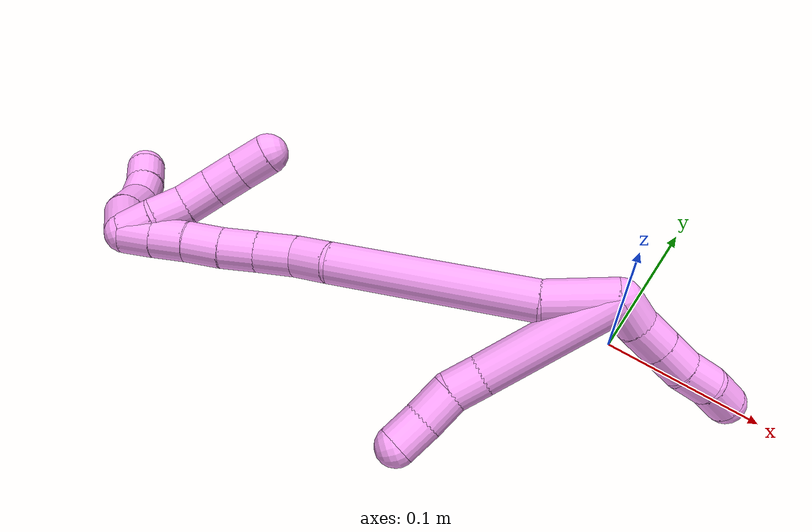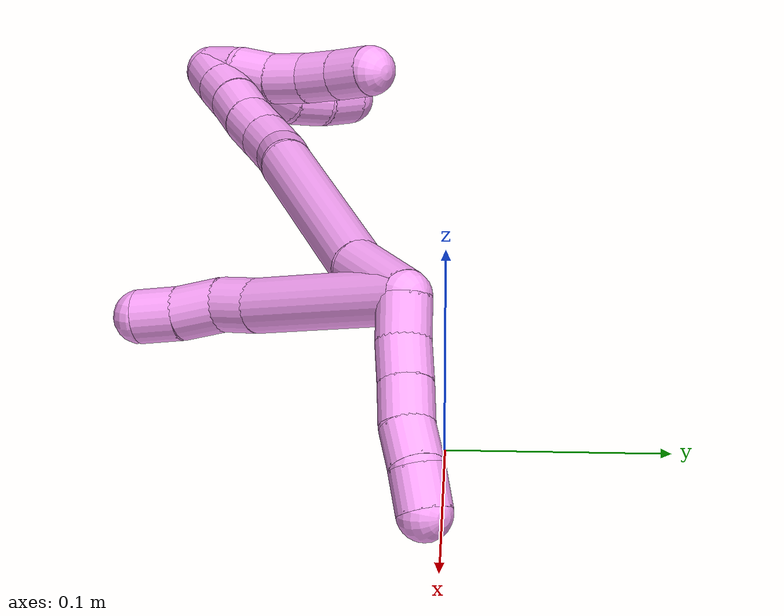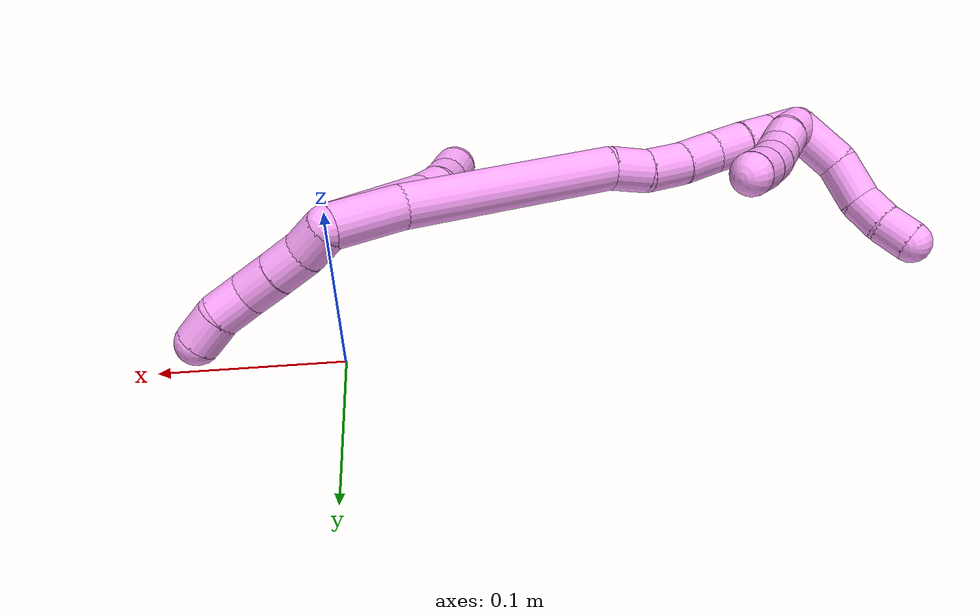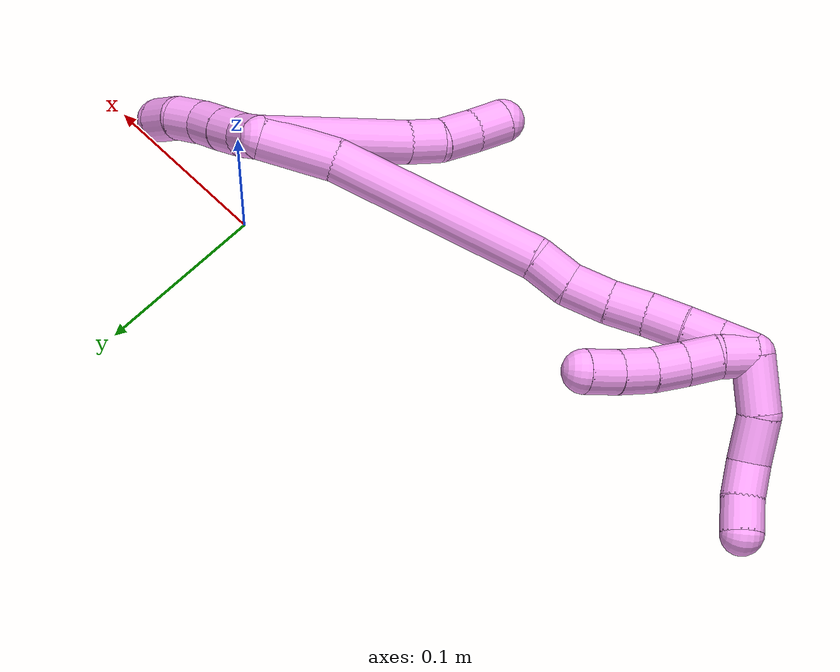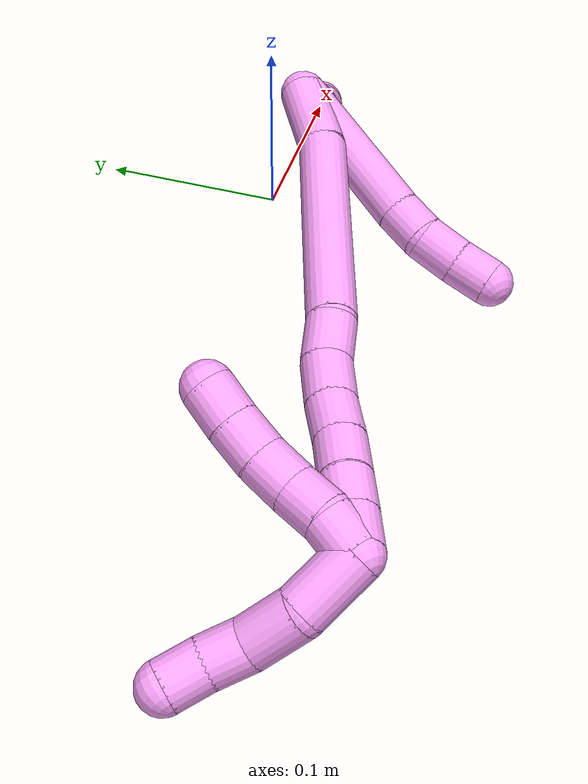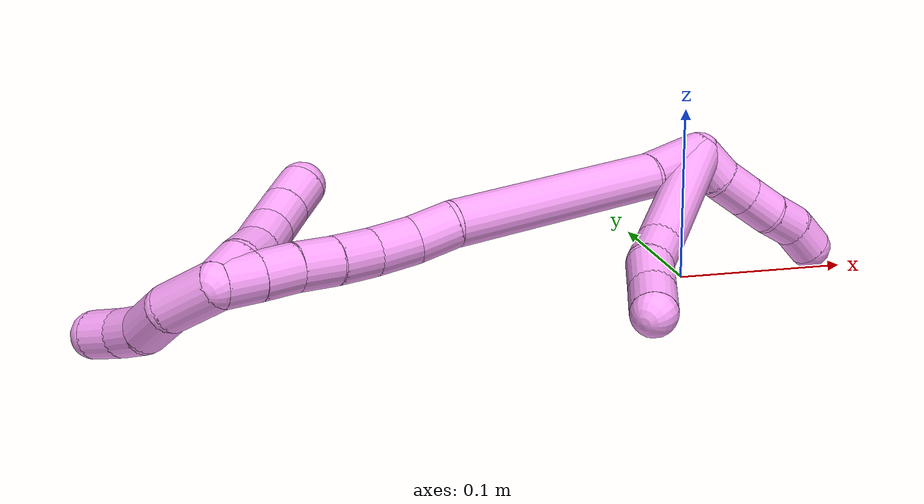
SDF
<sdf version="1.7">
 <world name="default">
  <model name="4">
   <static>0</static>
   <link name="4">
    <collision name="collision-cylinder-e_1_2_8">
     <pose>0.007244 0.004947 -0.042692 -3.02624 0.166979 -1.93366</pose>
     <geometry><cylinder><radius>0.0125</radius><length>0.087167</length></cylinder></geometry>
     <surface>
      <friction><ode><mu>1.16</mu><mu2>1.16</mu2><slip1>0</slip1><slip2>0</slip2></ode></friction>
      <contact><ode><kp>1e+06</kp><kd>1</kd><max_vel>0</max_vel><min_depth>0.001</min_depth></ode></contact>
     </surface>
    </collision>
    <visual name="visual-cylinder-e_1_2_8">
     <pose>0.007244 0.004947 -0.042692 -3.02624 0.166979 -1.93366</pose>
     <geometry><cylinder><radius>0.0125</radius><length>0.087167</length></cylinder></geometry>
     <material><ambient>1 0.65098 0.996078 1</ambient></material>
    </visual>
    <collision name="collision-cylinder-e_2_8_9">
     <pose>0.016338 0.010082 -0.095255 -3.12244 0.185244 -2.93612</pose>
     <geometry><cylinder><radius>0.0125</radius><length>0.020092</length></cylinder></geometry>
     <surface>
      <friction><ode><mu>1.16</mu><mu2>1.16</mu2><slip1>0</slip1><slip2>0</slip2></ode></friction>
      <contact><ode><kp>1e+06</kp><kd>1</kd><max_vel>0</max_vel><min_depth>0.001</min_depth></ode></contact>
     </surface>
    </collision>
    <visual name="visual-cylinder-e_2_8_9">
     <pose>0.016338 0.010082 -0.095255 -3.12244 0.185244 -2.93612</pose>
     <geometry><cylinder><radius>0.0125</radius><length>0.020092</length></cylinder></geometry>
     <material><ambient>1 0.65098 0.996078 1</ambient></material>
    </visual>
    <collision name="collision-cylinder-e_3_9_10">
     <pose>0.023377 0.011264 -0.114811 -3.03945 0.489707 -2.73802</pose>
     <geometry><cylinder><radius>0.0125</radius><length>0.022062</length></cylinder></geometry>
     <surface>
      <friction><ode><mu>1.16</mu><mu2>1.16</mu2><slip1>0</slip1><slip2>0</slip2></ode></friction>
      <contact><ode><kp>1e+06</kp><kd>1</kd><max_vel>0</max_vel><min_depth>0.001</min_depth></ode></contact>
     </surface>
    </collision>
    <visual name="visual-cylinder-e_3_9_10">
     <pose>0.023377 0.011264 -0.114811 -3.03945 0.489707 -2.73802</pose>
     <geometry><cylinder><radius>0.0125</radius><length>0.022062</length></cylinder></geometry>
     <material><ambient>1 0.65098 0.996078 1</ambient></material>
    </visual>
    <collision name="collision-cylinder-e_4_10_6">
     <pose>0.03323 0.012005 -0.13372 3.1143 0.467996 3.02722</pose>
     <geometry><cylinder><radius>0.0125</radius><length>0.02068</length></cylinder></geometry>
     <surface>
      <friction><ode><mu>1.16</mu><mu2>1.16</mu2><slip1>0</slip1><slip2>0</slip2></ode></friction>
      <contact><ode><kp>1e+06</kp><kd>1</kd><max_vel>0</max_vel><min_depth>0.001</min_depth></ode></contact>
     </surface>
    </collision>
    <visual name="visual-cylinder-e_4_10_6">
     <pose>0.03323 0.012005 -0.13372 3.1143 0.467996 3.02722</pose>
     <geometry><cylinder><radius>0.0125</radius><length>0.02068</length></cylinder></geometry>
     <material><ambient>1 0.65098 0.996078 1</ambient></material>
    </visual>
    <collision name="collision-cylinder-e_1_2_11">
     <pose>0.006049 0.007449 0.002815 -1.20952 0.64965 -0.457351</pose>
     <geometry><cylinder><radius>0.0125</radius><length>0.02</length></cylinder></geometry>
     <surface>
      <friction><ode><mu>1.16</mu><mu2>1.16</mu2><slip1>0</slip1><slip2>0</slip2></ode></friction>
      <contact><ode><kp>1e+06</kp><kd>1</kd><max_vel>0</max_vel><min_depth>0.001</min_depth></ode></contact>
     </surface>
    </collision>
    <visual name="visual-cylinder-e_1_2_11">
     <pose>0.006049 0.007449 0.002815 -1.20952 0.64965 -0.457351</pose>
     <geometry><cylinder><radius>0.0125</radius><length>0.02</length></cylinder></geometry>
     <material><ambient>1 0.65098 0.996078 1</ambient></material>
    </visual>
    <collision name="collision-cylinder-e_2_11_12">
     <pose>0.018422 0.021098 0.010273 -0.927933 0.684676 -0.352944</pose>
     <geometry><cylinder><radius>0.0125</radius><length>0.02</length></cylinder></geometry>
     <surface>
      <friction><ode><mu>1.16</mu><mu2>1.16</mu2><slip1>0</slip1><slip2>0</slip2></ode></friction>
      <contact><ode><kp>1e+06</kp><kd>1</kd><max_vel>0</max_vel><min_depth>0.001</min_depth></ode></contact>
     </surface>
    </collision>
    <visual name="visual-cylinder-e_2_11_12">
     <pose>0.018422 0.021098 0.010273 -0.927933 0.684676 -0.352944</pose>
     <geometry><cylinder><radius>0.0125</radius><length>0.02</length></cylinder></geometry>
     <material><ambient>1 0.65098 0.996078 1</ambient></material>
    </visual>
    <collision name="collision-cylinder-e_3_12_13">
     <pose>0.031262 0.033398 0.019426 -0.934203 0.70963 -0.369439</pose>
     <geometry><cylinder><radius>0.0125</radius><length>0.02</length></cylinder></geometry>
     <surface>
      <friction><ode><mu>1.16</mu><mu2>1.16</mu2><slip1>0</slip1><slip2>0</slip2></ode></friction>
      <contact><ode><kp>1e+06</kp><kd>1</kd><max_vel>0</max_vel><min_depth>0.001</min_depth></ode></contact>
     </surface>
    </collision>
    <visual name="visual-cylinder-e_3_12_13">
     <pose>0.031262 0.033398 0.019426 -0.934203 0.70963 -0.369439</pose>
     <geometry><cylinder><radius>0.0125</radius><length>0.02</length></cylinder></geometry>
     <material><ambient>1 0.65098 0.996078 1</ambient></material>
    </visual>
    <collision name="collision-cylinder-e_4_13_14">
     <pose>0.043199 0.045321 0.029994 -0.76564 0.57301 -0.236168</pose>
     <geometry><cylinder><radius>0.0125</radius><length>0.02</length></cylinder></geometry>
     <surface>
      <friction><ode><mu>1.16</mu><mu2>1.16</mu2><slip1>0</slip1><slip2>0</slip2></ode></friction>
      <contact><ode><kp>1e+06</kp><kd>1</kd><max_vel>0</max_vel><min_depth>0.001</min_depth></ode></contact>
     </surface>
    </collision>
    <visual name="visual-cylinder-e_4_13_14">
     <pose>0.043199 0.045321 0.029994 -0.76564 0.57301 -0.236168</pose>
     <geometry><cylinder><radius>0.0125</radius><length>0.02</length></cylinder></geometry>
     <material><ambient>1 0.65098 0.996078 1</ambient></material>
    </visual>
    <collision name="collision-cylinder-e_5_14_5">
     <pose>0.05331 0.058942 0.040201 -1.08182 0.488064 -0.296925</pose>
     <geometry><cylinder><radius>0.0125</radius><length>0.02</length></cylinder></geometry>
     <surface>
      <friction><ode><mu>1.16</mu><mu2>1.16</mu2><slip1>0</slip1><slip2>0</slip2></ode></friction>
      <contact><ode><kp>1e+06</kp><kd>1</kd><max_vel>0</max_vel><min_depth>0.001</min_depth></ode></contact>
     </surface>
    </collision>
    <visual name="visual-cylinder-e_5_14_5">
     <pose>0.05331 0.058942 0.040201 -1.08182 0.488064 -0.296925</pose>
     <geometry><cylinder><radius>0.0125</radius><length>0.02</length></cylinder></geometry>
     <material><ambient>1 0.65098 0.996078 1</ambient></material>
    </visual>
    <collision name="collision-cylinder-e_1_2_15">
     <pose>-0.006202 -0.001131 -0.020783 3.08722 -0.289592 -2.77285</pose>
     <geometry><cylinder><radius>0.0125</radius><length>0.043435</length></cylinder></geometry>
     <surface>
      <friction><ode><mu>1.16</mu><mu2>1.16</mu2><slip1>0</slip1><slip2>0</slip2></ode></friction>
      <contact><ode><kp>1e+06</kp><kd>1</kd><max_vel>0</max_vel><min_depth>0.001</min_depth></ode></contact>
     </surface>
    </collision>
    <visual name="visual-cylinder-e_1_2_15">
     <pose>-0.006202 -0.001131 -0.020783 3.08722 -0.289592 -2.77285</pose>
     <geometry><cylinder><radius>0.0125</radius><length>0.043435</length></cylinder></geometry>
     <material><ambient>1 0.65098 0.996078 1</ambient></material>
    </visual>
    <collision name="collision-cylinder-e_2_15_16">
     <pose>-0.042601 -0.005585 -0.095875 3.08048 -0.506665 -2.90655</pose>
     <geometry><cylinder><radius>0.0125</radius><length>0.124459</length></cylinder></geometry>
     <surface>
      <friction><ode><mu>1.16</mu><mu2>1.16</mu2><slip1>0</slip1><slip2>0</slip2></ode></friction>
      <contact><ode><kp>1e+06</kp><kd>1</kd><max_vel>0</max_vel><min_depth>0.001</min_depth></ode></contact>
     </surface>
    </collision>
    <visual name="visual-cylinder-e_2_15_16">
     <pose>-0.042601 -0.005585 -0.095875 3.08048 -0.506665 -2.90655</pose>
     <geometry><cylinder><radius>0.0125</radius><length>0.124459</length></cylinder></geometry>
     <material><ambient>1 0.65098 0.996078 1</ambient></material>
    </visual>
    <collision name="collision-cylinder-e_3_16_17">
     <pose>-0.079177 -0.006943 -0.159602 -2.9358 -0.58546 2.48143</pose>
     <geometry><cylinder><radius>0.0125</radius><length>0.023085</length></cylinder></geometry>
     <surface>
      <friction><ode><mu>1.16</mu><mu2>1.16</mu2><slip1>0</slip1><slip2>0</slip2></ode></friction>
      <contact><ode><kp>1e+06</kp><kd>1</kd><max_vel>0</max_vel><min_depth>0.001</min_depth></ode></contact>
     </surface>
    </collision>
    <visual name="visual-cylinder-e_3_16_17">
     <pose>-0.079177 -0.006943 -0.159602 -2.9358 -0.58546 2.48143</pose>
     <geometry><cylinder><radius>0.0125</radius><length>0.023085</length></cylinder></geometry>
     <material><ambient>1 0.65098 0.996078 1</ambient></material>
    </visual>
    <collision name="collision-cylinder-e_4_17_18">
     <pose>-0.090858 -0.005592 -0.180122 3.08624 -0.445008 -2.8981</pose>
     <geometry><cylinder><radius>0.0125</radius><length>0.02464</length></cylinder></geometry>
     <surface>
      <friction><ode><mu>1.16</mu><mu2>1.16</mu2><slip1>0</slip1><slip2>0</slip2></ode></friction>
      <contact><ode><kp>1e+06</kp><kd>1</kd><max_vel>0</max_vel><min_depth>0.001</min_depth></ode></contact>
     </surface>
    </collision>
    <visual name="visual-cylinder-e_4_17_18">
     <pose>-0.090858 -0.005592 -0.180122 3.08624 -0.445008 -2.8981</pose>
     <geometry><cylinder><radius>0.0125</radius><length>0.02464</length></cylinder></geometry>
     <material><ambient>1 0.65098 0.996078 1</ambient></material>
    </visual>
    <collision name="collision-cylinder-e_5_18_19">
     <pose>-0.100374 -0.007875 -0.201334 2.97812 -0.390038 -2.35536</pose>
     <geometry><cylinder><radius>0.0125</radius><length>0.022155</length></cylinder></geometry>
     <surface>
      <friction><ode><mu>1.16</mu><mu2>1.16</mu2><slip1>0</slip1><slip2>0</slip2></ode></friction>
      <contact><ode><kp>1e+06</kp><kd>1</kd><max_vel>0</max_vel><min_depth>0.001</min_depth></ode></contact>
     </surface>
    </collision>
    <visual name="visual-cylinder-e_5_18_19">
     <pose>-0.100374 -0.007875 -0.201334 2.97812 -0.390038 -2.35536</pose>
     <geometry><cylinder><radius>0.0125</radius><length>0.022155</length></cylinder></geometry>
     <material><ambient>1 0.65098 0.996078 1</ambient></material>
    </visual>
    <collision name="collision-cylinder-e_6_19_20">
     <pose>-0.10945 -0.01138 -0.221093 2.95337 -0.459755 -2.37481</pose>
     <geometry><cylinder><radius>0.0125</radius><length>0.021925</length></cylinder></geometry>
     <surface>
      <friction><ode><mu>1.16</mu><mu2>1.16</mu2><slip1>0</slip1><slip2>0</slip2></ode></friction>
      <contact><ode><kp>1e+06</kp><kd>1</kd><max_vel>0</max_vel><min_depth>0.001</min_depth></ode></contact>
     </surface>
    </collision>
    <visual name="visual-cylinder-e_6_19_20">
     <pose>-0.10945 -0.01138 -0.221093 2.95337 -0.459755 -2.37481</pose>
     <geometry><cylinder><radius>0.0125</radius><length>0.021925</length></cylinder></geometry>
     <material><ambient>1 0.65098 0.996078 1</ambient></material>
    </visual>
    <collision name="collision-cylinder-e_7_20_21">
     <pose>-0.118608 -0.014248 -0.239884 3.02941 -0.436772 -2.64596</pose>
     <geometry><cylinder><radius>0.0125</radius><length>0.020301</length></cylinder></geometry>
     <surface>
      <friction><ode><mu>1.16</mu><mu2>1.16</mu2><slip1>0</slip1><slip2>0</slip2></ode></friction>
      <contact><ode><kp>1e+06</kp><kd>1</kd><max_vel>0</max_vel><min_depth>0.001</min_depth></ode></contact>
     </surface>
    </collision>
    <visual name="visual-cylinder-e_7_20_21">
     <pose>-0.118608 -0.014248 -0.239884 3.02941 -0.436772 -2.64596</pose>
     <geometry><cylinder><radius>0.0125</radius><length>0.020301</length></cylinder></geometry>
     <material><ambient>1 0.65098 0.996078 1</ambient></material>
    </visual>
    <collision name="collision-cylinder-e_8_21_1">
     <pose>-0.127334 -0.016541 -0.257898 3.00017 -0.459212 -2.55312</pose>
     <geometry><cylinder><radius>0.0125</radius><length>0.020001</length></cylinder></geometry>
     <surface>
      <friction><ode><mu>1.16</mu><mu2>1.16</mu2><slip1>0</slip1><slip2>0</slip2></ode></friction>
      <contact><ode><kp>1e+06</kp><kd>1</kd><max_vel>0</max_vel><min_depth>0.001</min_depth></ode></contact>
     </surface>
    </collision>
    <visual name="visual-cylinder-e_8_21_1">
     <pose>-0.127334 -0.016541 -0.257898 3.00017 -0.459212 -2.55312</pose>
     <geometry><cylinder><radius>0.0125</radius><length>0.020001</length></cylinder></geometry>
     <material><ambient>1 0.65098 0.996078 1</ambient></material>
    </visual>
    <collision name="collision-cylinder-e_1_1_22">
     <pose>-0.133226 -0.017844 -0.25688 0.003927 -0.146415 -0.000288</pose>
     <geometry><cylinder><radius>0.0125</radius><length>0.02</length></cylinder></geometry>
     <surface>
      <friction><ode><mu>1.16</mu><mu2>1.16</mu2><slip1>0</slip1><slip2>0</slip2></ode></friction>
      <contact><ode><kp>1e+06</kp><kd>1</kd><max_vel>0</max_vel><min_depth>0.001</min_depth></ode></contact>
     </surface>
    </collision>
    <visual name="visual-cylinder-e_1_1_22">
     <pose>-0.133226 -0.017844 -0.25688 0.003927 -0.146415 -0.000288</pose>
     <geometry><cylinder><radius>0.0125</radius><length>0.02</length></cylinder></geometry>
     <material><ambient>1 0.65098 0.996078 1</ambient></material>
    </visual>
    <collision name="collision-cylinder-e_2_22_23">
     <pose>-0.136928 -0.015849 -0.237457 -0.210176 -0.226263 0.023967</pose>
     <geometry><cylinder><radius>0.0125</radius><length>0.02</length></cylinder></geometry>
     <surface>
      <friction><ode><mu>1.16</mu><mu2>1.16</mu2><slip1>0</slip1><slip2>0</slip2></ode></friction>
      <contact><ode><kp>1e+06</kp><kd>1</kd><max_vel>0</max_vel><min_depth>0.001</min_depth></ode></contact>
     </surface>
    </collision>
    <visual name="visual-cylinder-e_2_22_23">
     <pose>-0.136928 -0.015849 -0.237457 -0.210176 -0.226263 0.023967</pose>
     <geometry><cylinder><radius>0.0125</radius><length>0.02</length></cylinder></geometry>
     <material><ambient>1 0.65098 0.996078 1</ambient></material>
    </visual>
    <collision name="collision-cylinder-e_3_23_24">
     <pose>-0.142064 -0.013559 -0.218357 -0.026908 -0.293391 0.003976</pose>
     <geometry><cylinder><radius>0.0125</radius><length>0.02</length></cylinder></geometry>
     <surface>
      <friction><ode><mu>1.16</mu><mu2>1.16</mu2><slip1>0</slip1><slip2>0</slip2></ode></friction>
      <contact><ode><kp>1e+06</kp><kd>1</kd><max_vel>0</max_vel><min_depth>0.001</min_depth></ode></contact>
     </surface>
    </collision>
    <visual name="visual-cylinder-e_3_23_24">
     <pose>-0.142064 -0.013559 -0.218357 -0.026908 -0.293391 0.003976</pose>
     <geometry><cylinder><radius>0.0125</radius><length>0.02</length></cylinder></geometry>
     <material><ambient>1 0.65098 0.996078 1</ambient></material>
    </visual>
    <collision name="collision-cylinder-e_4_24_25">
     <pose>-0.147095 -0.014102 -0.199052 0.082049 -0.215631 -0.008886</pose>
     <geometry><cylinder><radius>0.0125</radius><length>0.02</length></cylinder></geometry>
     <surface>
      <friction><ode><mu>1.16</mu><mu2>1.16</mu2><slip1>0</slip1><slip2>0</slip2></ode></friction>
      <contact><ode><kp>1e+06</kp><kd>1</kd><max_vel>0</max_vel><min_depth>0.001</min_depth></ode></contact>
     </surface>
    </collision>
    <visual name="visual-cylinder-e_4_24_25">
     <pose>-0.147095 -0.014102 -0.199052 0.082049 -0.215631 -0.008886</pose>
     <geometry><cylinder><radius>0.0125</radius><length>0.02</length></cylinder></geometry>
     <material><ambient>1 0.65098 0.996078 1</ambient></material>
    </visual>
    <collision name="collision-cylinder-e_5_25_4">
     <pose>-0.150871 -0.016175 -0.179533 0.129321 -0.164359 -0.010666</pose>
     <geometry><cylinder><radius>0.0125</radius><length>0.02</length></cylinder></geometry>
     <surface>
      <friction><ode><mu>1.16</mu><mu2>1.16</mu2><slip1>0</slip1><slip2>0</slip2></ode></friction>
      <contact><ode><kp>1e+06</kp><kd>1</kd><max_vel>0</max_vel><min_depth>0.001</min_depth></ode></contact>
     </surface>
    </collision>
    <visual name="visual-cylinder-e_5_25_4">
     <pose>-0.150871 -0.016175 -0.179533 0.129321 -0.164359 -0.010666</pose>
     <geometry><cylinder><radius>0.0125</radius><length>0.02</length></cylinder></geometry>
     <material><ambient>1 0.65098 0.996078 1</ambient></material>
    </visual>
    <collision name="collision-cylinder-e_1_1_26">
     <pose>-0.144811 -0.008313 -0.270086 -1.90659 -0.914155 1.21142</pose>
     <geometry><cylinder><radius>0.0125</radius><length>0.032937</length></cylinder></geometry>
     <surface>
      <friction><ode><mu>1.16</mu><mu2>1.16</mu2><slip1>0</slip1><slip2>0</slip2></ode></friction>
      <contact><ode><kp>1e+06</kp><kd>1</kd><max_vel>0</max_vel><min_depth>0.001</min_depth></ode></contact>
     </surface>
    </collision>
    <visual name="visual-cylinder-e_1_1_26">
     <pose>-0.144811 -0.008313 -0.270086 -1.90659 -0.914155 1.21142</pose>
     <geometry><cylinder><radius>0.0125</radius><length>0.032937</length></cylinder></geometry>
     <material><ambient>1 0.65098 0.996078 1</ambient></material>
    </visual>
    <collision name="collision-cylinder-e_2_26_27">
     <pose>-0.166993 0.011094 -0.272298 -1.46025 -0.74163 0.66984</pose>
     <geometry><cylinder><radius>0.0125</radius><length>0.027059</length></cylinder></geometry>
     <surface>
      <friction><ode><mu>1.16</mu><mu2>1.16</mu2><slip1>0</slip1><slip2>0</slip2></ode></friction>
      <contact><ode><kp>1e+06</kp><kd>1</kd><max_vel>0</max_vel><min_depth>0.001</min_depth></ode></contact>
     </surface>
    </collision>
    <visual name="visual-cylinder-e_2_26_27">
     <pose>-0.166993 0.011094 -0.272298 -1.46025 -0.74163 0.66984</pose>
     <geometry><cylinder><radius>0.0125</radius><length>0.027059</length></cylinder></geometry>
     <material><ambient>1 0.65098 0.996078 1</ambient></material>
    </visual>
    <collision name="collision-cylinder-e_3_27_28">
     <pose>-0.184821 0.025814 -0.269992 -1.32492 -1.05265 0.851037</pose>
     <geometry><cylinder><radius>0.0125</radius><length>0.020002</length></cylinder></geometry>
     <surface>
      <friction><ode><mu>1.16</mu><mu2>1.16</mu2><slip1>0</slip1><slip2>0</slip2></ode></friction>
      <contact><ode><kp>1e+06</kp><kd>1</kd><max_vel>0</max_vel><min_depth>0.001</min_depth></ode></contact>
     </surface>
    </collision>
    <visual name="visual-cylinder-e_3_27_28">
     <pose>-0.184821 0.025814 -0.269992 -1.32492 -1.05265 0.851037</pose>
     <geometry><cylinder><radius>0.0125</radius><length>0.020002</length></cylinder></geometry>
     <material><ambient>1 0.65098 0.996078 1</ambient></material>
    </visual>
    <collision name="collision-cylinder-e_4_28_3">
     <pose>-0.202769 0.034396 -0.268792 -1.57234 -1.18344 1.18487</pose>
     <geometry><cylinder><radius>0.0125</radius><length>0.020002</length></cylinder></geometry>
     <surface>
      <friction><ode><mu>1.16</mu><mu2>1.16</mu2><slip1>0</slip1><slip2>0</slip2></ode></friction>
      <contact><ode><kp>1e+06</kp><kd>1</kd><max_vel>0</max_vel><min_depth>0.001</min_depth></ode></contact>
     </surface>
    </collision>
    <visual name="visual-cylinder-e_4_28_3">
     <pose>-0.202769 0.034396 -0.268792 -1.57234 -1.18344 1.18487</pose>
     <geometry><cylinder><radius>0.0125</radius><length>0.020002</length></cylinder></geometry>
     <material><ambient>1 0.65098 0.996078 1</ambient></material>
    </visual>
    <collision name="collision-sphere-3">
     <pose>-0.212029 0.038173 -0.268798 0 -0 0</pose>
     <geometry><sphere><radius>0.0125</radius></sphere></geometry>
     <surface>
      <friction><ode><mu>1.16</mu><mu2>1.16</mu2><slip1>0</slip1><slip2>0</slip2></ode></friction>
      <contact><ode><kp>1e+06</kp><kd>1</kd><max_vel>0</max_vel><min_depth>0.001</min_depth></ode></contact>
     </surface>
    </collision>
    <visual name="visual-sphere-3">
     <pose>-0.212029 0.038173 -0.268798 0 -0 0</pose>
     <geometry><sphere><radius>0.0125</radius></sphere></geometry>
     <material><ambient>1 0.65098 0.996078 1</ambient></material>
    </visual>
    <collision name="collision-sphere-28">
     <pose>-0.193509 0.030618 -0.268786 0 -0 0</pose>
     <geometry><sphere><radius>0.0125</radius></sphere></geometry>
     <surface>
      <friction><ode><mu>1.16</mu><mu2>1.16</mu2><slip1>0</slip1><slip2>0</slip2></ode></friction>
      <contact><ode><kp>1e+06</kp><kd>1</kd><max_vel>0</max_vel><min_depth>0.001</min_depth></ode></contact>
     </surface>
    </collision>
    <visual name="visual-sphere-28">
     <pose>-0.193509 0.030618 -0.268786 0 -0 0</pose>
     <geometry><sphere><radius>0.0125</radius></sphere></geometry>
     <material><ambient>1 0.65098 0.996078 1</ambient></material>
    </visual>
    <collision name="collision-sphere-27">
     <pose>-0.176132 0.021009 -0.271197 0 -0 0</pose>
     <geometry><sphere><radius>0.0125</radius></sphere></geometry>
     <surface>
      <friction><ode><mu>1.16</mu><mu2>1.16</mu2><slip1>0</slip1><slip2>0</slip2></ode></friction>
      <contact><ode><kp>1e+06</kp><kd>1</kd><max_vel>0</max_vel><min_depth>0.001</min_depth></ode></contact>
     </surface>
    </collision>
    <visual name="visual-sphere-27">
     <pose>-0.176132 0.021009 -0.271197 0 -0 0</pose>
     <geometry><sphere><radius>0.0125</radius></sphere></geometry>
     <material><ambient>1 0.65098 0.996078 1</ambient></material>
    </visual>
    <collision name="collision-sphere-26">
     <pose>-0.157855 0.001179 -0.273399 0 -0 0</pose>
     <geometry><sphere><radius>0.0125</radius></sphere></geometry>
     <surface>
      <friction><ode><mu>1.16</mu><mu2>1.16</mu2><slip1>0</slip1><slip2>0</slip2></ode></friction>
      <contact><ode><kp>1e+06</kp><kd>1</kd><max_vel>0</max_vel><min_depth>0.001</min_depth></ode></contact>
     </surface>
    </collision>
    <visual name="visual-sphere-26">
     <pose>-0.157855 0.001179 -0.273399 0 -0 0</pose>
     <geometry><sphere><radius>0.0125</radius></sphere></geometry>
     <material><ambient>1 0.65098 0.996078 1</ambient></material>
    </visual>
    <collision name="collision-sphere-4">
     <pose>-0.152507 -0.017447 -0.169751 0 -0 0</pose>
     <geometry><sphere><radius>0.0125</radius></sphere></geometry>
     <surface>
      <friction><ode><mu>1.16</mu><mu2>1.16</mu2><slip1>0</slip1><slip2>0</slip2></ode></friction>
      <contact><ode><kp>1e+06</kp><kd>1</kd><max_vel>0</max_vel><min_depth>0.001</min_depth></ode></contact>
     </surface>
    </collision>
    <visual name="visual-sphere-4">
     <pose>-0.152507 -0.017447 -0.169751 0 -0 0</pose>
     <geometry><sphere><radius>0.0125</radius></sphere></geometry>
     <material><ambient>1 0.65098 0.996078 1</ambient></material>
    </visual>
    <collision name="collision-sphere-25">
     <pose>-0.149235 -0.014902 -0.189316 0 -0 0</pose>
     <geometry><sphere><radius>0.0125</radius></sphere></geometry>
     <surface>
      <friction><ode><mu>1.16</mu><mu2>1.16</mu2><slip1>0</slip1><slip2>0</slip2></ode></friction>
      <contact><ode><kp>1e+06</kp><kd>1</kd><max_vel>0</max_vel><min_depth>0.001</min_depth></ode></contact>
     </surface>
    </collision>
    <visual name="visual-sphere-25">
     <pose>-0.149235 -0.014902 -0.189316 0 -0 0</pose>
     <geometry><sphere><radius>0.0125</radius></sphere></geometry>
     <material><ambient>1 0.65098 0.996078 1</ambient></material>
    </visual>
    <collision name="collision-sphere-24">
     <pose>-0.144956 -0.013301 -0.208787 0 -0 0</pose>
     <geometry><sphere><radius>0.0125</radius></sphere></geometry>
     <surface>
      <friction><ode><mu>1.16</mu><mu2>1.16</mu2><slip1>0</slip1><slip2>0</slip2></ode></friction>
      <contact><ode><kp>1e+06</kp><kd>1</kd><max_vel>0</max_vel><min_depth>0.001</min_depth></ode></contact>
     </surface>
    </collision>
    <visual name="visual-sphere-24">
     <pose>-0.144956 -0.013301 -0.208787 0 -0 0</pose>
     <geometry><sphere><radius>0.0125</radius></sphere></geometry>
     <material><ambient>1 0.65098 0.996078 1</ambient></material>
    </visual>
    <collision name="collision-sphere-23">
     <pose>-0.139172 -0.013816 -0.227926 0 -0 0</pose>
     <geometry><sphere><radius>0.0125</radius></sphere></geometry>
     <surface>
      <friction><ode><mu>1.16</mu><mu2>1.16</mu2><slip1>0</slip1><slip2>0</slip2></ode></friction>
      <contact><ode><kp>1e+06</kp><kd>1</kd><max_vel>0</max_vel><min_depth>0.001</min_depth></ode></contact>
     </surface>
    </collision>
    <visual name="visual-sphere-23">
     <pose>-0.139172 -0.013816 -0.227926 0 -0 0</pose>
     <geometry><sphere><radius>0.0125</radius></sphere></geometry>
     <material><ambient>1 0.65098 0.996078 1</ambient></material>
    </visual>
    <collision name="collision-sphere-22">
     <pose>-0.134685 -0.017883 -0.246987 0 -0 0</pose>
     <geometry><sphere><radius>0.0125</radius></sphere></geometry>
     <surface>
      <friction><ode><mu>1.16</mu><mu2>1.16</mu2><slip1>0</slip1><slip2>0</slip2></ode></friction>
      <contact><ode><kp>1e+06</kp><kd>1</kd><max_vel>0</max_vel><min_depth>0.001</min_depth></ode></contact>
     </surface>
    </collision>
    <visual name="visual-sphere-22">
     <pose>-0.134685 -0.017883 -0.246987 0 -0 0</pose>
     <geometry><sphere><radius>0.0125</radius></sphere></geometry>
     <material><ambient>1 0.65098 0.996078 1</ambient></material>
    </visual>
    <collision name="collision-sphere-1">
     <pose>-0.131767 -0.017805 -0.266773 0 -0 0</pose>
     <geometry><sphere><radius>0.0125</radius></sphere></geometry>
     <surface>
      <friction><ode><mu>1.16</mu><mu2>1.16</mu2><slip1>0</slip1><slip2>0</slip2></ode></friction>
      <contact><ode><kp>1e+06</kp><kd>1</kd><max_vel>0</max_vel><min_depth>0.001</min_depth></ode></contact>
     </surface>
    </collision>
    <visual name="visual-sphere-1">
     <pose>-0.131767 -0.017805 -0.266773 0 -0 0</pose>
     <geometry><sphere><radius>0.0125</radius></sphere></geometry>
     <material><ambient>1 0.65098 0.996078 1</ambient></material>
    </visual>
    <collision name="collision-sphere-21">
     <pose>-0.122902 -0.015278 -0.249023 0 -0 0</pose>
     <geometry><sphere><radius>0.0125</radius></sphere></geometry>
     <surface>
      <friction><ode><mu>1.16</mu><mu2>1.16</mu2><slip1>0</slip1><slip2>0</slip2></ode></friction>
      <contact><ode><kp>1e+06</kp><kd>1</kd><max_vel>0</max_vel><min_depth>0.001</min_depth></ode></contact>
     </surface>
    </collision>
    <visual name="visual-sphere-21">
     <pose>-0.122902 -0.015278 -0.249023 0 -0 0</pose>
     <geometry><sphere><radius>0.0125</radius></sphere></geometry>
     <material><ambient>1 0.65098 0.996078 1</ambient></material>
    </visual>
    <collision name="collision-sphere-11">
     <pose>0.012098 0.014898 0.005629 0 -0 0</pose>
     <geometry><sphere><radius>0.0125</radius></sphere></geometry>
     <surface>
      <friction><ode><mu>1.16</mu><mu2>1.16</mu2><slip1>0</slip1><slip2>0</slip2></ode></friction>
      <contact><ode><kp>1e+06</kp><kd>1</kd><max_vel>0</max_vel><min_depth>0.001</min_depth></ode></contact>
     </surface>
    </collision>
    <visual name="visual-sphere-11">
     <pose>0.012098 0.014898 0.005629 0 -0 0</pose>
     <geometry><sphere><radius>0.0125</radius></sphere></geometry>
     <material><ambient>1 0.65098 0.996078 1</ambient></material>
    </visual>
    <collision name="collision-sphere-6">
     <pose>0.037894 0.011753 -0.142944 0 -0 0</pose>
     <geometry><sphere><radius>0.0125</radius></sphere></geometry>
     <surface>
      <friction><ode><mu>1.16</mu><mu2>1.16</mu2><slip1>0</slip1><slip2>0</slip2></ode></friction>
      <contact><ode><kp>1e+06</kp><kd>1</kd><max_vel>0</max_vel><min_depth>0.001</min_depth></ode></contact>
     </surface>
    </collision>
    <visual name="visual-sphere-6">
     <pose>0.037894 0.011753 -0.142944 0 -0 0</pose>
     <geometry><sphere><radius>0.0125</radius></sphere></geometry>
     <material><ambient>1 0.65098 0.996078 1</ambient></material>
    </visual>
    <collision name="collision-sphere-10">
     <pose>0.028565 0.012256 -0.124495 0 -0 0</pose>
     <geometry><sphere><radius>0.0125</radius></sphere></geometry>
     <surface>
      <friction><ode><mu>1.16</mu><mu2>1.16</mu2><slip1>0</slip1><slip2>0</slip2></ode></friction>
      <contact><ode><kp>1e+06</kp><kd>1</kd><max_vel>0</max_vel><min_depth>0.001</min_depth></ode></contact>
     </surface>
    </collision>
    <visual name="visual-sphere-10">
     <pose>0.028565 0.012256 -0.124495 0 -0 0</pose>
     <geometry><sphere><radius>0.0125</radius></sphere></geometry>
     <material><ambient>1 0.65098 0.996078 1</ambient></material>
    </visual>
    <collision name="collision-sphere-9">
     <pose>0.018188 0.010271 -0.105128 0 -0 0</pose>
     <geometry><sphere><radius>0.0125</radius></sphere></geometry>
     <surface>
      <friction><ode><mu>1.16</mu><mu2>1.16</mu2><slip1>0</slip1><slip2>0</slip2></ode></friction>
      <contact><ode><kp>1e+06</kp><kd>1</kd><max_vel>0</max_vel><min_depth>0.001</min_depth></ode></contact>
     </surface>
    </collision>
    <visual name="visual-sphere-9">
     <pose>0.018188 0.010271 -0.105128 0 -0 0</pose>
     <geometry><sphere><radius>0.0125</radius></sphere></geometry>
     <material><ambient>1 0.65098 0.996078 1</ambient></material>
    </visual>
    <collision name="collision-sphere-2">
     <geometry><sphere><radius>0.0125</radius></sphere></geometry>
     <surface>
      <friction><ode><mu>1.16</mu><mu2>1.16</mu2><slip1>0</slip1><slip2>0</slip2></ode></friction>
      <contact><ode><kp>1e+06</kp><kd>1</kd><max_vel>0</max_vel><min_depth>0.001</min_depth></ode></contact>
     </surface>
    </collision>
    <visual name="visual-sphere-2">
     <geometry><sphere><radius>0.0125</radius></sphere></geometry>
     <material><ambient>1 0.65098 0.996078 1</ambient></material>
    </visual>
    <collision name="collision-sphere-19">
     <pose>-0.104586 -0.009542 -0.211443 0 -0 0</pose>
     <geometry><sphere><radius>0.0125</radius></sphere></geometry>
     <surface>
      <friction><ode><mu>1.16</mu><mu2>1.16</mu2><slip1>0</slip1><slip2>0</slip2></ode></friction>
      <contact><ode><kp>1e+06</kp><kd>1</kd><max_vel>0</max_vel><min_depth>0.001</min_depth></ode></contact>
     </surface>
    </collision>
    <visual name="visual-sphere-19">
     <pose>-0.104586 -0.009542 -0.211443 0 -0 0</pose>
     <geometry><sphere><radius>0.0125</radius></sphere></geometry>
     <material><ambient>1 0.65098 0.996078 1</ambient></material>
    </visual>
    <collision name="collision-sphere-8">
     <pose>0.014488 0.009893 -0.085383 0 -0 0</pose>
     <geometry><sphere><radius>0.0125</radius></sphere></geometry>
     <surface>
      <friction><ode><mu>1.16</mu><mu2>1.16</mu2><slip1>0</slip1><slip2>0</slip2></ode></friction>
      <contact><ode><kp>1e+06</kp><kd>1</kd><max_vel>0</max_vel><min_depth>0.001</min_depth></ode></contact>
     </surface>
    </collision>
    <visual name="visual-sphere-8">
     <pose>0.014488 0.009893 -0.085383 0 -0 0</pose>
     <geometry><sphere><radius>0.0125</radius></sphere></geometry>
     <material><ambient>1 0.65098 0.996078 1</ambient></material>
    </visual>
    <collision name="collision-sphere-12">
     <pose>0.024747 0.027298 0.014917 0 -0 0</pose>
     <geometry><sphere><radius>0.0125</radius></sphere></geometry>
     <surface>
      <friction><ode><mu>1.16</mu><mu2>1.16</mu2><slip1>0</slip1><slip2>0</slip2></ode></friction>
      <contact><ode><kp>1e+06</kp><kd>1</kd><max_vel>0</max_vel><min_depth>0.001</min_depth></ode></contact>
     </surface>
    </collision>
    <visual name="visual-sphere-12">
     <pose>0.024747 0.027298 0.014917 0 -0 0</pose>
     <geometry><sphere><radius>0.0125</radius></sphere></geometry>
     <material><ambient>1 0.65098 0.996078 1</ambient></material>
    </visual>
    <collision name="collision-sphere-13">
     <pose>0.037778 0.039498 0.023936 0 -0 0</pose>
     <geometry><sphere><radius>0.0125</radius></sphere></geometry>
     <surface>
      <friction><ode><mu>1.16</mu><mu2>1.16</mu2><slip1>0</slip1><slip2>0</slip2></ode></friction>
      <contact><ode><kp>1e+06</kp><kd>1</kd><max_vel>0</max_vel><min_depth>0.001</min_depth></ode></contact>
     </surface>
    </collision>
    <visual name="visual-sphere-13">
     <pose>0.037778 0.039498 0.023936 0 -0 0</pose>
     <geometry><sphere><radius>0.0125</radius></sphere></geometry>
     <material><ambient>1 0.65098 0.996078 1</ambient></material>
    </visual>
    <collision name="collision-sphere-14">
     <pose>0.048621 0.051144 0.036052 0 -0 0</pose>
     <geometry><sphere><radius>0.0125</radius></sphere></geometry>
     <surface>
      <friction><ode><mu>1.16</mu><mu2>1.16</mu2><slip1>0</slip1><slip2>0</slip2></ode></friction>
      <contact><ode><kp>1e+06</kp><kd>1</kd><max_vel>0</max_vel><min_depth>0.001</min_depth></ode></contact>
     </surface>
    </collision>
    <visual name="visual-sphere-14">
     <pose>0.048621 0.051144 0.036052 0 -0 0</pose>
     <geometry><sphere><radius>0.0125</radius></sphere></geometry>
     <material><ambient>1 0.65098 0.996078 1</ambient></material>
    </visual>
    <collision name="collision-sphere-5">
     <pose>0.057999 0.066739 0.044349 0 -0 0</pose>
     <geometry><sphere><radius>0.0125</radius></sphere></geometry>
     <surface>
      <friction><ode><mu>1.16</mu><mu2>1.16</mu2><slip1>0</slip1><slip2>0</slip2></ode></friction>
      <contact><ode><kp>1e+06</kp><kd>1</kd><max_vel>0</max_vel><min_depth>0.001</min_depth></ode></contact>
     </surface>
    </collision>
    <visual name="visual-sphere-5">
     <pose>0.057999 0.066739 0.044349 0 -0 0</pose>
     <geometry><sphere><radius>0.0125</radius></sphere></geometry>
     <material><ambient>1 0.65098 0.996078 1</ambient></material>
    </visual>
    <collision name="collision-sphere-15">
     <pose>-0.012403 -0.002262 -0.041565 0 -0 0</pose>
     <geometry><sphere><radius>0.0125</radius></sphere></geometry>
     <surface>
      <friction><ode><mu>1.16</mu><mu2>1.16</mu2><slip1>0</slip1><slip2>0</slip2></ode></friction>
      <contact><ode><kp>1e+06</kp><kd>1</kd><max_vel>0</max_vel><min_depth>0.001</min_depth></ode></contact>
     </surface>
    </collision>
    <visual name="visual-sphere-15">
     <pose>-0.012403 -0.002262 -0.041565 0 -0 0</pose>
     <geometry><sphere><radius>0.0125</radius></sphere></geometry>
     <material><ambient>1 0.65098 0.996078 1</ambient></material>
    </visual>
    <collision name="collision-sphere-16">
     <pose>-0.072799 -0.008909 -0.150185 0 -0 0</pose>
     <geometry><sphere><radius>0.0125</radius></sphere></geometry>
     <surface>
      <friction><ode><mu>1.16</mu><mu2>1.16</mu2><slip1>0</slip1><slip2>0</slip2></ode></friction>
      <contact><ode><kp>1e+06</kp><kd>1</kd><max_vel>0</max_vel><min_depth>0.001</min_depth></ode></contact>
     </surface>
    </collision>
    <visual name="visual-sphere-16">
     <pose>-0.072799 -0.008909 -0.150185 0 -0 0</pose>
     <geometry><sphere><radius>0.0125</radius></sphere></geometry>
     <material><ambient>1 0.65098 0.996078 1</ambient></material>
    </visual>
    <collision name="collision-sphere-17">
     <pose>-0.085555 -0.004977 -0.169019 0 -0 0</pose>
     <geometry><sphere><radius>0.0125</radius></sphere></geometry>
     <surface>
      <friction><ode><mu>1.16</mu><mu2>1.16</mu2><slip1>0</slip1><slip2>0</slip2></ode></friction>
      <contact><ode><kp>1e+06</kp><kd>1</kd><max_vel>0</max_vel><min_depth>0.001</min_depth></ode></contact>
     </surface>
    </collision>
    <visual name="visual-sphere-17">
     <pose>-0.085555 -0.004977 -0.169019 0 -0 0</pose>
     <geometry><sphere><radius>0.0125</radius></sphere></geometry>
     <material><ambient>1 0.65098 0.996078 1</ambient></material>
    </visual>
    <collision name="collision-sphere-18">
     <pose>-0.096162 -0.006207 -0.191225 0 -0 0</pose>
     <geometry><sphere><radius>0.0125</radius></sphere></geometry>
     <surface>
      <friction><ode><mu>1.16</mu><mu2>1.16</mu2><slip1>0</slip1><slip2>0</slip2></ode></friction>
      <contact><ode><kp>1e+06</kp><kd>1</kd><max_vel>0</max_vel><min_depth>0.001</min_depth></ode></contact>
     </surface>
    </collision>
    <visual name="visual-sphere-18">
     <pose>-0.096162 -0.006207 -0.191225 0 -0 0</pose>
     <geometry><sphere><radius>0.0125</radius></sphere></geometry>
     <material><ambient>1 0.65098 0.996078 1</ambient></material>
    </visual>
    <collision name="collision-sphere-20">
     <pose>-0.114314 -0.013219 -0.230744 0 -0 0</pose>
     <geometry><sphere><radius>0.0125</radius></sphere></geometry>
     <surface>
      <friction><ode><mu>1.16</mu><mu2>1.16</mu2><slip1>0</slip1><slip2>0</slip2></ode></friction>
      <contact><ode><kp>1e+06</kp><kd>1</kd><max_vel>0</max_vel><min_depth>0.001</min_depth></ode></contact>
     </surface>
    </collision>
    <visual name="visual-sphere-20">
     <pose>-0.114314 -0.013219 -0.230744 0 -0 0</pose>
     <geometry><sphere><radius>0.0125</radius></sphere></geometry>
     <material><ambient>1 0.65098 0.996078 1</ambient></material>
    </visual>
    <inertial>
     <pose>-0.060338 0.002731 -0.130719 0 -0 0</pose>
     <mass>0.75</mass>
     <inertia>
      <ixx>-0.000267</ixx>
      <ixy>0</ixy>
      <ixz>0</ixz>
      <iyy>0.000141</iyy>
      <iyz>0</iyz>
      <izz>5.3e-05</izz>
     </inertia>
    </inertial>
   </link>
   <pose>0.001656 -0.017857 0.077925 -1.3398 0.149584 -0.724117</pose>
  </model>
 </world>
</sdf>
